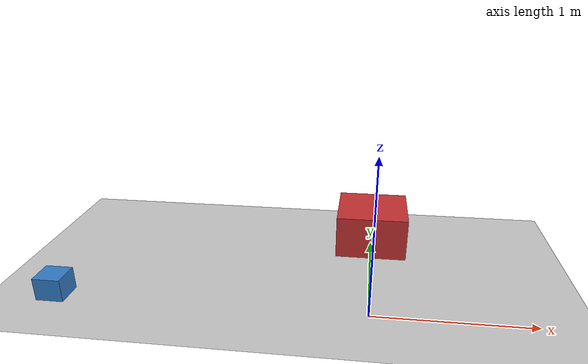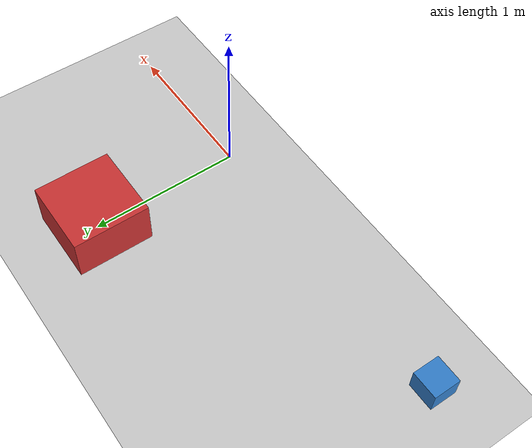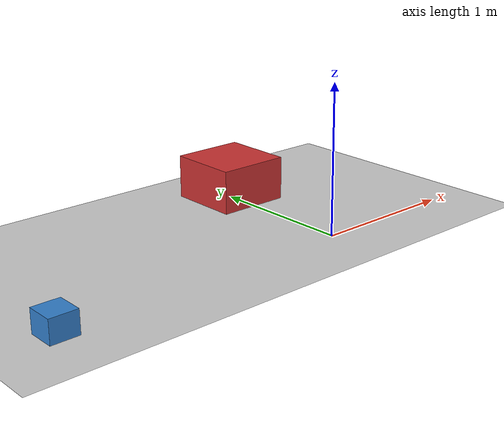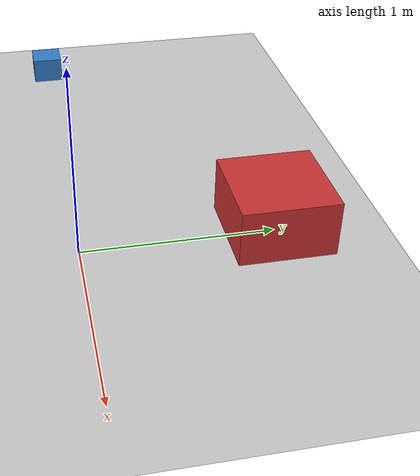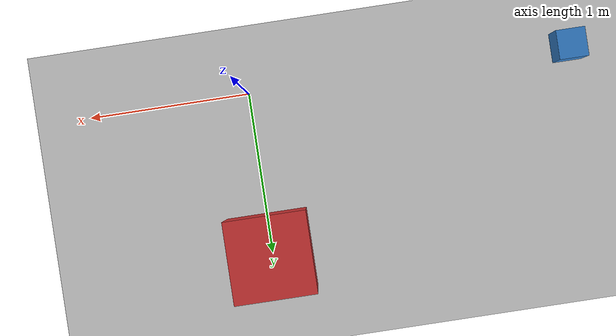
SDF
<?xml version="1.0" ?>
<sdf version="1.6">
  <world name="warehouse">

    <physics name="1ms" type="ignored">
      <max_step_size>0.001</max_step_size>
      <real_time_factor>1.0</real_time_factor>
    </physics>

    <plugin name='ignition::gazebo::systems::Physics' filename='libignition-gazebo-physics-system.so'/>
    <plugin name='ignition::gazebo::systems::UserCommands' filename='libignition-gazebo-user-commands-system.so'/>
    <plugin name='ignition::gazebo::systems::SceneBroadcaster' filename='libignition-gazebo-scene-broadcaster-system.so'/>

    <light type="directional" name="sun">
      <cast_shadows>true</cast_shadows>
      <pose>0 0 10 0 0 0</pose>
      <diffuse>0.8 0.8 0.8 1</diffuse>
      <specular>0.2 0.2 0.2 1</specular>
      <attenuation>
        <range>1000</range>
        <constant>0.9</constant>
        <linear>0.01</linear>
        <quadratic>0.001</quadratic>
      </attenuation>
      <direction>-0.5 0.1 -0.9</direction>
    </light>

    <model name="ground_plane">
      <static>true</static>
      <link name="link">
        <collision name="collision">
          <geometry>
            <plane>
              <normal>0 0 1</normal>
              <size>100 100</size>
            </plane>
          </geometry>
        </collision>
        <visual name="visual">
          <geometry>
            <plane>
              <normal>0 0 1</normal>
              <size>100 100</size>
            </plane>
          </geometry>
          <material>
            <ambient>0.8 0.8 0.8 1</ambient>
            <diffuse>0.8 0.8 0.8 1</diffuse>
            <specular>0.8 0.8 0.8 1</specular>
          </material>
        </visual>
      </link>
    </model>

    <!-- 왼쪽 장애물: 라이다에 감지됨 (높이 0.3m > 라이다 스캔 높이 0.193m) -->
    <model name="obstacle_left">
      <static>true</static>
      <pose>0 1.0 0.15 0 0 0</pose>
      <link name="link">
        <collision name="collision">
          <geometry>
            <box><size>0.5 0.5 0.3</size></box>
          </geometry>
        </collision>
        <visual name="visual">
          <geometry>
            <box><size>0.5 0.5 0.3</size></box>
          </geometry>
          <material>
            <ambient>0.8 0.2 0.2 1</ambient>
            <diffuse>0.8 0.2 0.2 1</diffuse>
          </material>
        </visual>
      </link>
    </model>

    <!-- 전방 장애물: 라이다에 안 잡히고 카메라에만 보임 (높이 0.15m < 라이다 스캔 높이 0.193m) -->
    <model name="obstacle_front">
      <static>true</static>
      <pose>-2.0 0 0.075 0 0 0</pose>
      <link name="link">
        <collision name="collision">
          <geometry>
            <box><size>0.18 0.18 0.15</size></box>
          </geometry>
        </collision>
        <visual name="visual">
          <geometry>
            <box><size>0.18 0.18 0.15</size></box>
          </geometry>
          <material>
            <ambient>0.2 0.5 0.8 1</ambient>
            <diffuse>0.2 0.5 0.8 1</diffuse>
          </material>
        </visual>
      </link>
    </model>

  </world>
</sdf>
